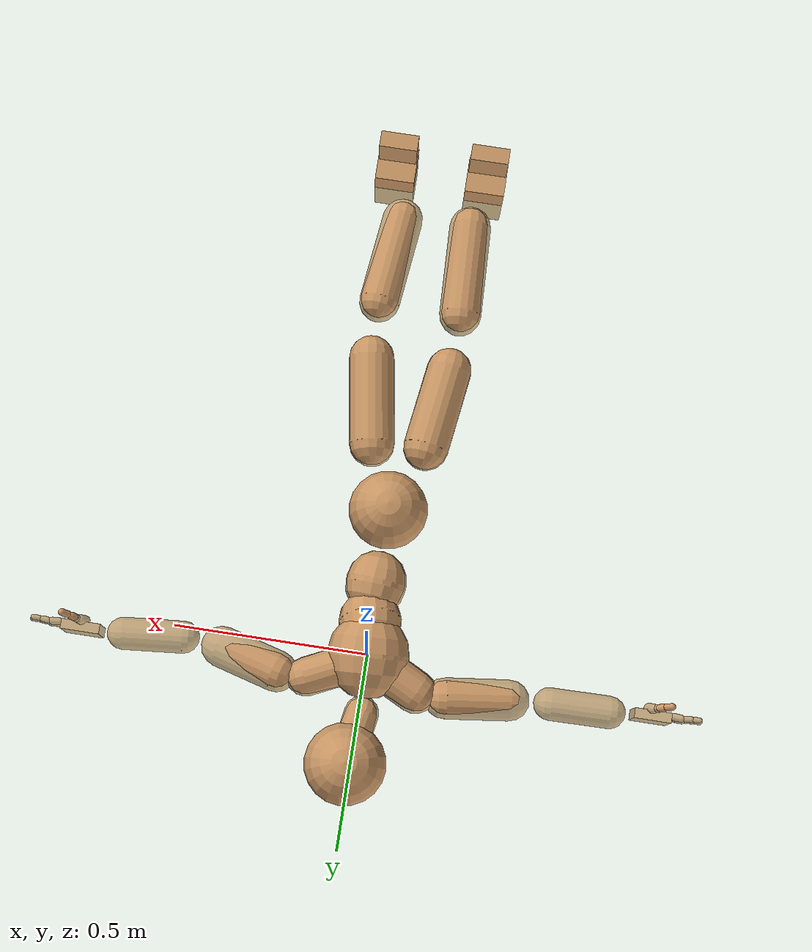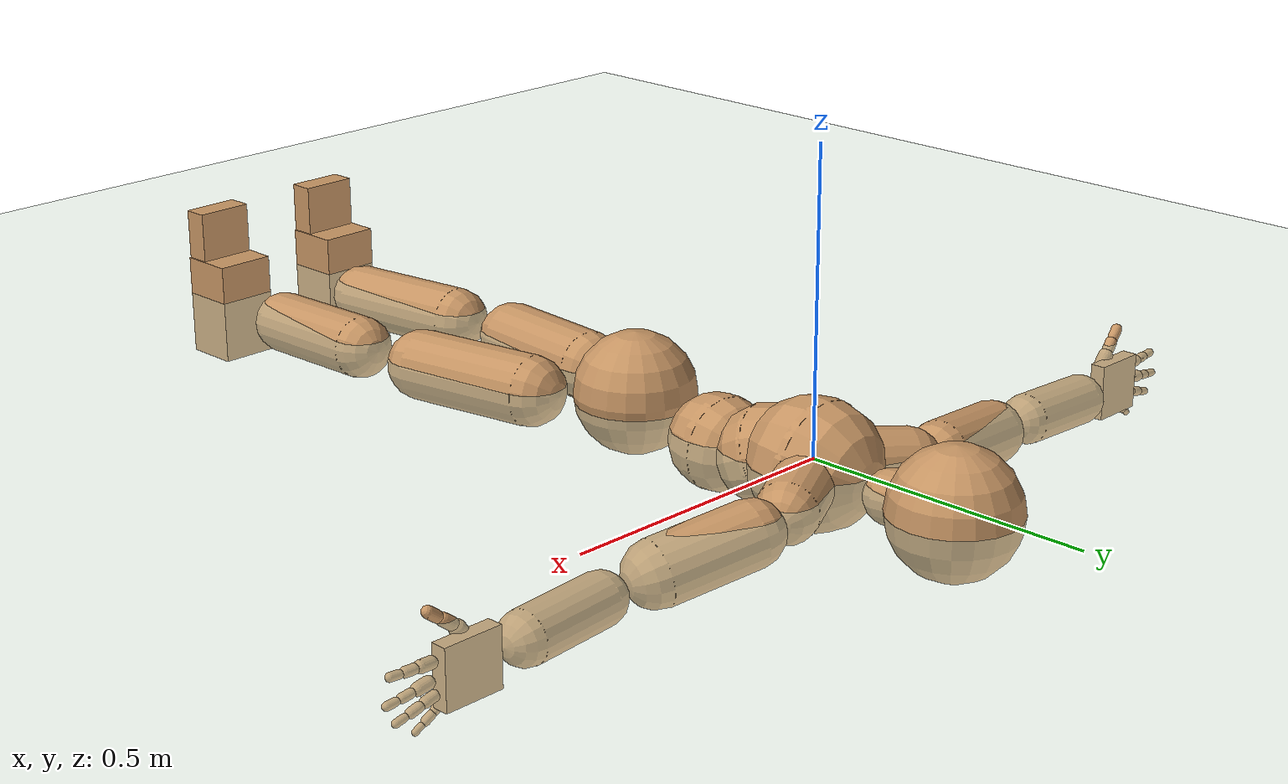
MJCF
<mujoco model="humanoid">
  <compiler coordinate="local"/>
  <default>
    <joint damping="0.0" armature="0.01" stiffness="0.0" limited="true"/>
    <geom conaffinity="1" condim="3" contype="7" margin="0.001" rgba="0.8 0.6 .4 1"/>
  </default>
  <asset>
    <texture type="skybox" builtin="gradient" rgb1=".4 .5 .6" rgb2="0 0 0" width="100" height="100"/>
    <texture builtin="flat" height="1278" mark="cross" markrgb="1 1 1" name="texgeom" random="0.01" rgb1="0.8 0.6 0.4" rgb2="0.8 0.6 0.4" type="cube" width="127"/>
    <texture builtin="checker" height="100" name="texplane" rgb1="0 0 0" rgb2="0.8 0.8 0.8" type="2d" width="100"/>
    <material name="MatPlane" reflectance="0.5" shininess="1" specular="1" texrepeat="60 60" texture="texplane"/>
    <material name="geom" texture="texgeom" texuniform="true"/>
  </asset>
  <worldbody>
    <light cutoff="100" diffuse="1 1 1" dir="-0 0 -1.3" directional="true" exponent="1" pos="0 0 1.3" specular=".1 .1 .1"/>
    <geom conaffinity="1" condim="3" name="floor" pos="0 0 0" rgba="0.8 0.9 0.8 1" size="100 100 .2" type="plane" material="MatPlane"/>
    <body name="Pelvis" pos="0.0029 -0.382 0.0113">
      <freejoint name="Pelvis"/>
      <geom type="sphere" contype="1" conaffinity="1" density="4629.6296296296305" size="0.1031" pos="0.0000 0.0000 0.0000" name="Pelvis"/>
      <body name="L_Hip" pos="0.0577 -0.0972 -0.0243">
        <joint name="L_Hip_x" type="hinge" pos="0 0 0" axis="1 0 0" user="250 2.5 1 500 10 2" armature="0.01" range="-90.0000 90.0000" damping="0" stiffness="0"/>
        <joint name="L_Hip_y" type="hinge" pos="0 0 0" axis="0 1 0" user="250 2.5 1 500 10 2" armature="0.01" range="-90.0000 90.0000" damping="0" stiffness="0"/>
        <joint name="L_Hip_z" type="hinge" pos="0 0 0" axis="0 0 1" user="250 2.5 1 500 10 2" armature="0.01" range="-90.0000 90.0000" damping="0" stiffness="0"/>
        <geom type="capsule" contype="1" conaffinity="1" density="2040.816327" fromto="0.0122 -0.0775 -0.0008 0.0488 -0.3099 -0.0031" size="0.0606" name="L_Hip"/>
        <body name="L_Knee" pos="0.0611 -0.3874 -0.0039">
          <joint name="L_Knee_x" type="hinge" pos="0 0 0" axis="1 0 0" user="250 2.5 1 500 10 2" armature="0.01" range="-180.0000 180.0000" damping="0" stiffness="0"/>
          <joint name="L_Knee_y" type="hinge" pos="0 0 0" axis="0 1 0" user="250 2.5 1 500 10 2" armature="0.01" range="-5.6250 5.6250" damping="0" stiffness="0"/>
          <joint name="L_Knee_z" type="hinge" pos="0 0 0" axis="0 0 1" user="250 2.5 1 500 10 2" armature="0.01" range="-5.6250 5.6250" damping="0" stiffness="0"/>
          <geom type="capsule" contype="1" conaffinity="1" density="1234.567901" fromto="-0.0087 -0.0830 -0.0063 -0.0347 -0.3320 -0.0254" size="0.0544" name="L_Knee"/>
          <body name="L_Ankle" pos="-0.0433 -0.415 -0.0317">
            <joint name="L_Ankle_x" type="hinge" pos="0 0 0" axis="1 0 0" user="150 2.5 1 500 10 2" armature="0.01" range="-90.0000 90.0000" damping="0" stiffness="0"/>
            <joint name="L_Ankle_y" type="hinge" pos="0 0 0" axis="0 1 0" user="150 2.5 1 500 10 2" armature="0.01" range="-90.0000 90.0000" damping="0" stiffness="0"/>
            <joint name="L_Ankle_z" type="hinge" pos="0 0 0" axis="0 0 1" user="150 2.5 1 500 10 2" armature="0.01" range="-90.0000 90.0000" damping="0" stiffness="0"/>
            <geom type="box" density="452.802995" pos="0.0430 -0.0302 0.0247" size="0.0524 0.0487 0.0893" quat="1.0000 0.0000 0.0000 0.0000" name="L_Ankle"/>
            <body name="L_Toe" pos="0.0498 -0.0608 0.1238">
              <joint name="L_Toe_x" type="hinge" pos="0 0 0" axis="1 0 0" user="150 1 1 500 1 1" armature="0.01" range="-90.0000 90.0000" damping="0" stiffness="0"/>
              <joint name="L_Toe_y" type="hinge" pos="0 0 0" axis="0 1 0" user="150 1 1 500 1 1" armature="0.01" range="-45.0000 45.0000" damping="0" stiffness="0"/>
              <joint name="L_Toe_z" type="hinge" pos="0 0 0" axis="0 0 1" user="150 1 1 500 1 1" armature="0.01" range="-45.0000 45.0000" damping="0" stiffness="0"/>
              <geom type="box" density="424.802018" pos="-0.0069 0.0035 0.0270" size="0.0501 0.0215 0.052" quat="1.0000 0.0000 0.0000 0.0000" name="L_Toe"/>
            </body>
          </body>
        </body>
      </body>
      <body name="R_Hip" pos="-0.0626 -0.1101 -0.0182">
        <joint name="R_Hip_x" type="hinge" pos="0 0 0" axis="1 0 0" user="250 2.5 1 500 10 2" armature="0.01" range="-90.0000 90.0000" damping="0" stiffness="0"/>
        <joint name="R_Hip_y" type="hinge" pos="0 0 0" axis="0 1 0" user="250 2.5 1 500 10 2" armature="0.01" range="-90.0000 90.0000" damping="0" stiffness="0"/>
        <joint name="R_Hip_z" type="hinge" pos="0 0 0" axis="0 0 1" user="250 2.5 1 500 10 2" armature="0.01" range="-90.0000 90.0000" damping="0" stiffness="0"/>
        <geom type="capsule" contype="1" conaffinity="1" density="2040.816327" fromto="-0.0100 -0.0738 -0.0025 -0.0402 -0.2951 -0.0100" size="0.0599" name="R_Hip"/>
        <body name="R_Knee" pos="-0.0502 -0.3689 -0.0125">
          <joint name="R_Knee_x" type="hinge" pos="0 0 0" axis="1 0 0" user="250 2.5 1 500 10 2" armature="0.01" range="-180.0000 180.0000" damping="0" stiffness="0"/>
          <joint name="R_Knee_y" type="hinge" pos="0 0 0" axis="0 1 0" user="250 2.5 1 500 10 2" armature="0.01" range="-5.6250 5.6250" damping="0" stiffness="0"/>
          <joint name="R_Knee_z" type="hinge" pos="0 0 0" axis="0 0 1" user="250 2.5 1 500 10 2" armature="0.01" range="-5.6250 5.6250" damping="0" stiffness="0"/>
          <geom type="capsule" contype="1" conaffinity="1" density="1234.567901" fromto="0.0028 -0.0847 -0.0040 0.0113 -0.3386 -0.0158" size="0.0559" name="R_Knee"/>
          <body name="R_Ankle" pos="0.0141 -0.4233 -0.0198">
            <joint name="R_Ankle_x" type="hinge" pos="0 0 0" axis="1 0 0" user="150 1 1 500 10 2" armature="0.01" range="-90.0000 90.0000" damping="0" stiffness="0"/>
            <joint name="R_Ankle_y" type="hinge" pos="0 0 0" axis="0 1 0" user="150 1 1 500 10 2" armature="0.01" range="-90.0000 90.0000" damping="0" stiffness="0"/>
            <joint name="R_Ankle_z" type="hinge" pos="0 0 0" axis="0 0 1" user="150 1 1 500 10 2" armature="0.01" range="-90.0000 90.0000" damping="0" stiffness="0"/>
            <geom type="box" density="452.801815" pos="-0.0255 -0.0275 0.0152" size="0.0524 0.0487 0.0893" quat="1.0000 0.0000 0.0000 0.0000" name="R_Ankle"/>
            <body name="R_Toe" pos="-0.0408 -0.0609 0.1247">
              <joint name="R_Toe_x" type="hinge" pos="0 0 0" axis="1 0 0" user="150 1 1 500 1 1" armature="0.01" range="-90.0000 90.0000" damping="0" stiffness="0"/>
              <joint name="R_Toe_y" type="hinge" pos="0 0 0" axis="0 1 0" user="150 1 1 500 1 1" armature="0.01" range="-45.0000 45.0000" damping="0" stiffness="0"/>
              <joint name="R_Toe_z" type="hinge" pos="0 0 0" axis="0 0 1" user="150 1 1 500 1 1" armature="0.01" range="-45.0000 45.0000" damping="0" stiffness="0"/>
              <geom type="box" density="424.798968" pos="0.0153 0.0062 0.0166" size="0.0501 0.0215 0.052" quat="1.0000 0.0000 0.0000 0.0000" name="R_Toe"/>
            </body>
          </body>
        </body>
      </body>
      <body name="Torso" pos="-0.0027 0.1172 -0.0317">
        <joint name="Torso_x" type="hinge" pos="0 0 0" axis="1 0 0" user="500 5 1 500 10 2" armature="0.01" range="-60.0000 60.0000" damping="0" stiffness="0"/>
        <joint name="Torso_y" type="hinge" pos="0 0 0" axis="0 1 0" user="500 5 1 500 10 2" armature="0.01" range="-60.0000 60.0000" damping="0" stiffness="0"/>
        <joint name="Torso_z" type="hinge" pos="0 0 0" axis="0 0 1" user="500 5 1 500 10 2" armature="0.01" range="-60.0000 60.0000" damping="0" stiffness="0"/>
        <geom type="capsule" contype="1" conaffinity="1" density="2040.816327" fromto="0.0048 0.0662 -0.0033 0.0059 0.0809 -0.0041" size="0.0788" name="Torso"/>
        <body name="Spine" pos="0.0106 0.1471 -0.0074">
          <joint name="Spine_x" type="hinge" pos="0 0 0" axis="1 0 0" user="500 5 1 500 10 2" armature="0.01" range="-60.0000 60.0000" damping="0" stiffness="0"/>
          <joint name="Spine_y" type="hinge" pos="0 0 0" axis="0 1 0" user="500 5 1 500 10 2" armature="0.01" range="-60.0000 60.0000" damping="0" stiffness="0"/>
          <joint name="Spine_z" type="hinge" pos="0 0 0" axis="0 0 1" user="500 5 1 500 10 2" armature="0.01" range="-60.0000 60.0000" damping="0" stiffness="0"/>
          <geom type="capsule" contype="1" conaffinity="1" density="2040.816327" fromto="-0.0053 0.0265 0.0113 -0.0065 0.0324 0.0138" size="0.0817" name="Spine"/>
          <body name="Chest" pos="-0.0118 0.0588 0.0251">
            <joint name="Chest_x" type="hinge" pos="0 0 0" axis="1 0 0" user="500 5 1 500 10 2" armature="0.01" range="-60.0000 60.0000" damping="0" stiffness="0"/>
            <joint name="Chest_y" type="hinge" pos="0 0 0" axis="0 1 0" user="500 5 1 500 10 2" armature="0.01" range="-60.0000 60.0000" damping="0" stiffness="0"/>
            <joint name="Chest_z" type="hinge" pos="0 0 0" axis="0 0 1" user="500 5 1 500 10 2" armature="0.01" range="-60.0000 60.0000" damping="0" stiffness="0"/>
            <geom type="capsule" contype="1" conaffinity="1" density="2040.816327" fromto="-0.0023 0.0524 -0.0062 -0.0029 0.0640 -0.0075" size="0.1063" name="Chest"/>
            <body name="Neck" pos="-0.0132 0.1725 -0.026">
              <joint name="Neck_x" type="hinge" pos="0 0 0" axis="1 0 0" user="150 1 1 250 50 4" armature="0.01" range="-180.0000 180.0000" damping="0" stiffness="0"/>
              <joint name="Neck_y" type="hinge" pos="0 0 0" axis="0 1 0" user="150 1 1 250 50 4" armature="0.01" range="-180.0000 180.0000" damping="0" stiffness="0"/>
              <joint name="Neck_z" type="hinge" pos="0 0 0" axis="0 0 1" user="150 1 1 250 50 4" armature="0.01" range="-180.0000 180.0000" damping="0" stiffness="0"/>
              <geom type="capsule" contype="1" conaffinity="1" density="1000" fromto="0.0053 0.0336 0.0052 0.0212 0.1345 0.0208" size="0.0449" name="Neck"/>
              <body name="Head" pos="0.0265 0.1681 0.026">
                <joint name="Head_x" type="hinge" pos="0 0 0" axis="1 0 0" user="150 1 1 250 50 4" armature="0.01" range="-90.0000 90.0000" damping="0" stiffness="0"/>
                <joint name="Head_y" type="hinge" pos="0 0 0" axis="0 1 0" user="150 1 1 250 50 4" armature="0.01" range="-90.0000 90.0000" damping="0" stiffness="0"/>
                <joint name="Head_z" type="hinge" pos="0 0 0" axis="0 0 1" user="150 1 1 250 50 4" armature="0.01" range="-90.0000 90.0000" damping="0" stiffness="0"/>
                <geom type="sphere" contype="1" conaffinity="1" density="1000" size="0.1055" pos="0.0000 0.0000 0.0000" name="Head"/>
              </body>
            </body>
            <body name="L_Thorax" pos="0.0474 0.0887 -0.0044">
              <joint name="L_Thorax_x" type="hinge" pos="0 0 0" axis="1 0 0" user="200 2 1 500 50 4" armature="0.01" range="-180.0000 180.0000" damping="0" stiffness="0"/>
              <joint name="L_Thorax_y" type="hinge" pos="0 0 0" axis="0 1 0" user="200 2 1 500 50 4" armature="0.01" range="-180.0000 180.0000" damping="0" stiffness="0"/>
              <joint name="L_Thorax_z" type="hinge" pos="0 0 0" axis="0 0 1" user="200 2 1 500 50 4" armature="0.01" range="-180.0000 180.0000" damping="0" stiffness="0"/>
              <geom type="capsule" contype="1" conaffinity="1" density="1000" fromto="0.0252 0.0116 -0.0034 0.1007 0.0464 -0.0136" size="0.0506" name="L_Thorax"/>
              <body name="L_Shoulder" pos="0.1258 0.058 -0.017">
                <joint name="L_Shoulder_x" type="hinge" pos="0 0 0" axis="1 0 0" user="200 2 1 500 50 4" armature="0.01" range="-180.0000 180.0000" damping="0" stiffness="0"/>
                <joint name="L_Shoulder_y" type="hinge" pos="0 0 0" axis="0 1 0" user="200 2 1 500 50 4" armature="0.01" range="-180.0000 180.0000" damping="0" stiffness="0"/>
                <joint name="L_Shoulder_z" type="hinge" pos="0 0 0" axis="0 0 1" user="200 2 1 500 50 4" armature="0.01" range="-180.0000 180.0000" damping="0" stiffness="0"/>
                <geom type="capsule" contype="1" conaffinity="1" density="1000" fromto="0.0514 -0.0146 -0.0088 0.2058 -0.0583 -0.0351" size="0.0536" name="L_Shoulder"/>
                <body name="L_Elbow" pos="0.2572 -0.0728 -0.0439">
                  <joint name="L_Elbow_x" type="hinge" pos="0 0 0" axis="1 0 0" user="150 1 1 150 10 2" armature="0.01" range="-720.0000 720.0000" damping="0" stiffness="0"/>
                  <joint name="L_Elbow_y" type="hinge" pos="0 0 0" axis="0 1 0" user="150 1 1 150 10 2" armature="0.01" range="-720.0000 720.0000" damping="0" stiffness="0"/>
                  <joint name="L_Elbow_z" type="hinge" pos="0 0 0" axis="0 0 1" user="150 1 1 150 10 2" armature="0.01" range="-720.0000 720.0000" damping="0" stiffness="0"/>
                  <geom type="capsule" contype="1" conaffinity="1" density="1000" fromto="0.0525 0.0047 -0.0000 0.2100 0.0188 -0.0001" size="0.0423" name="L_Elbow"/>
                  <body name="L_Wrist" pos="0.2625 0.0235 -0.0001">
                    <joint name="L_Wrist_x" type="hinge" pos="0 0 0" axis="1 0 0" user="100 1 1 150 1 1" armature="0.01" range="-180.0000 180.0000" damping="0" stiffness="0"/>
                    <joint name="L_Wrist_y" type="hinge" pos="0 0 0" axis="0 1 0" user="100 1 1 150 1 1" armature="0.01" range="-180.0000 180.0000" damping="0" stiffness="0"/>
                    <joint name="L_Wrist_z" type="hinge" pos="0 0 0" axis="0 0 1" user="100 1 1 150 1 1" armature="0.01" range="-180.0000 180.0000" damping="0" stiffness="0"/>
                    <geom type="box" density="1214.242045" pos="0.0551 -0.0016 -0.0029" size="0.0508 0.0131 0.0484" quat="1.0000 0.0000 0.0000 0.0000" name="L_Wrist"/>
                    <body name="L_Index1" pos="0.1069 -0.0084 0.0204">
                      <joint name="L_Index1_x" type="hinge" pos="0 0 0" axis="1 0 0" user="100 10 1 150" armature="0.01" range="-180.0000 180.0000" damping="0" stiffness="0"/>
                      <joint name="L_Index1_y" type="hinge" pos="0 0 0" axis="0 1 0" user="100 10 1 150" armature="0.01" range="-180.0000 180.0000" damping="0" stiffness="0"/>
                      <joint name="L_Index1_z" type="hinge" pos="0 0 0" axis="0 0 1" user="100 10 1 150" armature="0.01" range="-180.0000 180.0000" damping="0" stiffness="0"/>
                      <geom type="capsule" contype="1" conaffinity="1" density="1000" fromto="0.0066 0.0005 0.0006 0.0264 0.0020 0.0023" size="0.0097" name="L_Index1"/>
                      <body name="L_Index2" pos="0.033 0.0024 0.0029">
                        <joint name="L_Index2_x" type="hinge" pos="0 0 0" axis="1 0 0" user="100 10 1 150" armature="0.01" range="-180.0000 180.0000" damping="0" stiffness="0"/>
                        <joint name="L_Index2_y" type="hinge" pos="0 0 0" axis="0 1 0" user="100 10 1 150" armature="0.01" range="-180.0000 180.0000" damping="0" stiffness="0"/>
                        <joint name="L_Index2_z" type="hinge" pos="0 0 0" axis="0 0 1" user="100 10 1 150" armature="0.01" range="-180.0000 180.0000" damping="0" stiffness="0"/>
                        <geom type="capsule" contype="1" conaffinity="1" density="1000" fromto="0.0046 -0.0005 -0.0000 0.0186 -0.0020 -0.0002" size="0.008" name="L_Index2"/>
                        <body name="L_Index3" pos="0.0232 -0.0025 -0.0002">
                          <joint name="L_Index3_x" type="hinge" pos="0 0 0" axis="1 0 0" user="100 10 1 150" armature="0.01" range="-180.0000 180.0000" damping="0" stiffness="0"/>
                          <joint name="L_Index3_y" type="hinge" pos="0 0 0" axis="0 1 0" user="100 10 1 150" armature="0.01" range="-180.0000 180.0000" damping="0" stiffness="0"/>
                          <joint name="L_Index3_z" type="hinge" pos="0 0 0" axis="0 0 1" user="100 10 1 150" armature="0.01" range="-180.0000 180.0000" damping="0" stiffness="0"/>
                          <geom type="capsule" contype="1" conaffinity="1" density="1000" fromto="0.0050 -0.0001 0.0004 0.0202 -0.0004 0.0014" size="0.0068" name="L_Index3"/>
                        </body>
                      </body>
                    </body>
                    <body name="L_Middle1" pos="0.115 -0.0061 -0.0042">
                      <joint name="L_Middle1_x" type="hinge" pos="0 0 0" axis="1 0 0" user="100 10 1 150" armature="0.01" range="-180.0000 180.0000" damping="0" stiffness="0"/>
                      <joint name="L_Middle1_y" type="hinge" pos="0 0 0" axis="0 1 0" user="100 10 1 150" armature="0.01" range="-180.0000 180.0000" damping="0" stiffness="0"/>
                      <joint name="L_Middle1_z" type="hinge" pos="0 0 0" axis="0 0 1" user="100 10 1 150" armature="0.01" range="-180.0000 180.0000" damping="0" stiffness="0"/>
                      <geom type="capsule" contype="1" conaffinity="1" density="1000" fromto="0.0063 0.0002 -0.0008 0.0253 0.0006 -0.0033" size="0.01" name="L_Middle1"/>
                      <body name="L_Middle2" pos="0.0317 0.0008 -0.0041">
                        <joint name="L_Middle2_x" type="hinge" pos="0 0 0" axis="1 0 0" user="100 10 1 150" armature="0.01" range="-180.0000 180.0000" damping="0" stiffness="0"/>
                        <joint name="L_Middle2_y" type="hinge" pos="0 0 0" axis="0 1 0" user="100 10 1 150" armature="0.01" range="-180.0000 180.0000" damping="0" stiffness="0"/>
                        <joint name="L_Middle2_z" type="hinge" pos="0 0 0" axis="0 0 1" user="100 10 1 150" armature="0.01" range="-180.0000 180.0000" damping="0" stiffness="0"/>
                        <geom type="capsule" contype="1" conaffinity="1" density="1000" fromto="0.0048 -0.0004 -0.0009 0.0194 -0.0018 -0.0035" size="0.0074" name="L_Middle2"/>
                        <body name="L_Middle3" pos="0.0242 -0.0022 -0.0043">
                          <joint name="L_Middle3_x" type="hinge" pos="0 0 0" axis="1 0 0" user="100 10 1 150" armature="0.01" range="-180.0000 180.0000" damping="0" stiffness="0"/>
                          <joint name="L_Middle3_y" type="hinge" pos="0 0 0" axis="0 1 0" user="100 10 1 150" armature="0.01" range="-180.0000 180.0000" damping="0" stiffness="0"/>
                          <joint name="L_Middle3_z" type="hinge" pos="0 0 0" axis="0 0 1" user="100 10 1 150" armature="0.01" range="-180.0000 180.0000" damping="0" stiffness="0"/>
                          <geom type="capsule" contype="1" conaffinity="1" density="1000" fromto="0.0052 -0.0000 -0.0005 0.0210 -0.0002 -0.0019" size="0.0065" name="L_Middle3"/>
                        </body>
                      </body>
                    </body>
                    <body name="L_Pinky1" pos="0.0888 -0.0148 -0.046">
                      <joint name="L_Pinky1_x" type="hinge" pos="0 0 0" axis="1 0 0" user="100 10 1 150" armature="0.01" range="-180.0000 180.0000" damping="0" stiffness="0"/>
                      <joint name="L_Pinky1_y" type="hinge" pos="0 0 0" axis="0 1 0" user="100 10 1 150" armature="0.01" range="-180.0000 180.0000" damping="0" stiffness="0"/>
                      <joint name="L_Pinky1_z" type="hinge" pos="0 0 0" axis="0 0 1" user="100 10 1 150" armature="0.01" range="-180.0000 180.0000" damping="0" stiffness="0"/>
                      <geom type="capsule" contype="1" conaffinity="1" density="1000" fromto="0.0033 -0.0003 -0.0025 0.0133 -0.0010 -0.0099" size="0.0071" name="L_Pinky1"/>
                      <body name="L_Pinky2" pos="0.0166 -0.0013 -0.0124">
                        <joint name="L_Pinky2_x" type="hinge" pos="0 0 0" axis="1 0 0" user="100 10 1 150" armature="0.01" range="-180.0000 180.0000" damping="0" stiffness="0"/>
                        <joint name="L_Pinky2_y" type="hinge" pos="0 0 0" axis="0 1 0" user="100 10 1 150" armature="0.01" range="-180.0000 180.0000" damping="0" stiffness="0"/>
                        <joint name="L_Pinky2_z" type="hinge" pos="0 0 0" axis="0 0 1" user="100 10 1 150" armature="0.01" range="-180.0000 180.0000" damping="0" stiffness="0"/>
                        <geom type="capsule" contype="1" conaffinity="1" density="1000" fromto="0.0033 -0.0004 -0.0023 0.0131 -0.0015 -0.0091" size="0.0068" name="L_Pinky2"/>
                        <body name="L_Pinky3" pos="0.0163 -0.0019 -0.0114">
                          <joint name="L_Pinky3_x" type="hinge" pos="0 0 0" axis="1 0 0" user="100 10 1 150" armature="0.01" range="-180.0000 180.0000" damping="0" stiffness="0"/>
                          <joint name="L_Pinky3_y" type="hinge" pos="0 0 0" axis="0 1 0" user="100 10 1 150" armature="0.01" range="-180.0000 180.0000" damping="0" stiffness="0"/>
                          <joint name="L_Pinky3_z" type="hinge" pos="0 0 0" axis="0 0 1" user="100 10 1 150" armature="0.01" range="-180.0000 180.0000" damping="0" stiffness="0"/>
                          <geom type="capsule" contype="1" conaffinity="1" density="1000" fromto="0.0037 0.0000 -0.0019 0.0147 0.0001 -0.0075" size="0.0052" name="L_Pinky3"/>
                        </body>
                      </body>
                    </body>
                    <body name="L_Ring1" pos="0.1027 -0.0092 -0.0288">
                      <joint name="L_Ring1_x" type="hinge" pos="0 0 0" axis="1 0 0" user="100 10 1 150" armature="0.01" range="-180.0000 180.0000" damping="0" stiffness="0"/>
                      <joint name="L_Ring1_y" type="hinge" pos="0 0 0" axis="0 1 0" user="100 10 1 150" armature="0.01" range="-180.0000 180.0000" damping="0" stiffness="0"/>
                      <joint name="L_Ring1_z" type="hinge" pos="0 0 0" axis="0 0 1" user="100 10 1 150" armature="0.01" range="-180.0000 180.0000" damping="0" stiffness="0"/>
                      <geom type="capsule" contype="1" conaffinity="1" density="1000" fromto="0.0059 0.0003 -0.0011 0.0235 0.0012 -0.0044" size="0.0084" name="L_Ring1"/>
                      <body name="L_Ring2" pos="0.0294 0.0015 -0.0055">
                        <joint name="L_Ring2_x" type="hinge" pos="0 0 0" axis="1 0 0" user="100 10 1 150" armature="0.01" range="-180.0000 180.0000" damping="0" stiffness="0"/>
                        <joint name="L_Ring2_y" type="hinge" pos="0 0 0" axis="0 1 0" user="100 10 1 150" armature="0.01" range="-180.0000 180.0000" damping="0" stiffness="0"/>
                        <joint name="L_Ring2_z" type="hinge" pos="0 0 0" axis="0 0 1" user="100 10 1 150" armature="0.01" range="-180.0000 180.0000" damping="0" stiffness="0"/>
                        <geom type="capsule" contype="1" conaffinity="1" density="1000" fromto="0.0047 -0.0003 -0.0015 0.0190 -0.0013 -0.0059" size="0.0078" name="L_Ring2"/>
                        <body name="L_Ring3" pos="0.0237 -0.0017 -0.0074">
                          <joint name="L_Ring3_x" type="hinge" pos="0 0 0" axis="1 0 0" user="100 10 1 150" armature="0.01" range="-180.0000 180.0000" damping="0" stiffness="0"/>
                          <joint name="L_Ring3_y" type="hinge" pos="0 0 0" axis="0 1 0" user="100 10 1 150" armature="0.01" range="-180.0000 180.0000" damping="0" stiffness="0"/>
                          <joint name="L_Ring3_z" type="hinge" pos="0 0 0" axis="0 0 1" user="100 10 1 150" armature="0.01" range="-180.0000 180.0000" damping="0" stiffness="0"/>
                          <geom type="capsule" contype="1" conaffinity="1" density="1000" fromto="0.0051 0.0001 -0.0011 0.0206 0.0003 -0.0043" size="0.0061" name="L_Ring3"/>
                        </body>
                      </body>
                    </body>
                    <body name="L_Thumb1" pos="0.0428 -0.0193 0.0274">
                      <joint name="L_Thumb1_x" type="hinge" pos="0 0 0" axis="1 0 0" user="100 10 1 150" armature="0.01" range="-180.0000 180.0000" damping="0" stiffness="0"/>
                      <joint name="L_Thumb1_y" type="hinge" pos="0 0 0" axis="0 1 0" user="100 10 1 150" armature="0.01" range="-180.0000 180.0000" damping="0" stiffness="0"/>
                      <joint name="L_Thumb1_z" type="hinge" pos="0 0 0" axis="0 0 1" user="100 10 1 150" armature="0.01" range="-180.0000 180.0000" damping="0" stiffness="0"/>
                      <geom type="capsule" contype="1" conaffinity="1" density="1000" fromto="0.0036 0.0002 0.0053 0.0142 0.0010 0.0211" size="0.0128" name="L_Thumb1"/>
                      <body name="L_Thumb2" pos="0.0178 0.0012 0.0264">
                        <joint name="L_Thumb2_x" type="hinge" pos="0 0 0" axis="1 0 0" user="100 10 1 150" armature="0.01" range="-180.0000 180.0000" damping="0" stiffness="0"/>
                        <joint name="L_Thumb2_y" type="hinge" pos="0 0 0" axis="0 1 0" user="100 10 1 150" armature="0.01" range="-180.0000 180.0000" damping="0" stiffness="0"/>
                        <joint name="L_Thumb2_z" type="hinge" pos="0 0 0" axis="0 0 1" user="100 10 1 150" armature="0.01" range="-180.0000 180.0000" damping="0" stiffness="0"/>
                        <geom type="capsule" contype="1" conaffinity="1" density="1000" fromto="0.0043 -0.0011 0.0032 0.0172 -0.0042 0.0129" size="0.0102" name="L_Thumb2"/>
                        <body name="L_Thumb3" pos="0.0214 -0.0053 0.0161">
                          <joint name="L_Thumb3_x" type="hinge" pos="0 0 0" axis="1 0 0" user="100 10 1 150" armature="0.01" range="-180.0000 180.0000" damping="0" stiffness="0"/>
                          <joint name="L_Thumb3_y" type="hinge" pos="0 0 0" axis="0 1 0" user="100 10 1 150" armature="0.01" range="-180.0000 180.0000" damping="0" stiffness="0"/>
                          <joint name="L_Thumb3_z" type="hinge" pos="0 0 0" axis="0 0 1" user="100 10 1 150" armature="0.01" range="-180.0000 180.0000" damping="0" stiffness="0"/>
                          <geom type="capsule" contype="1" conaffinity="1" density="1000" fromto="0.0047 -0.0007 0.0036 0.0188 -0.0026 0.0145" size="0.0092" name="L_Thumb3"/>
                        </body>
                      </body>
                    </body>
                  </body>
                </body>
              </body>
            </body>
            <body name="R_Thorax" pos="-0.0499 0.0879 -0.0106">
              <joint name="R_Thorax_x" type="hinge" pos="0 0 0" axis="1 0 0" user="200 2 1 150 10 2" armature="0.01" range="-180.0000 180.0000" damping="0" stiffness="0"/>
              <joint name="R_Thorax_y" type="hinge" pos="0 0 0" axis="0 1 0" user="200 2 1 150 10 2" armature="0.01" range="-180.0000 180.0000" damping="0" stiffness="0"/>
              <joint name="R_Thorax_z" type="hinge" pos="0 0 0" axis="0 0 1" user="200 2 1 150 10 2" armature="0.01" range="-180.0000 180.0000" damping="0" stiffness="0"/>
              <geom type="capsule" contype="1" conaffinity="1" density="1000" fromto="-0.0218 0.0107 -0.0027 -0.0871 0.0429 -0.0109" size="0.0556" name="R_Thorax"/>
              <body name="R_Shoulder" pos="-0.1089 0.0536 -0.0136">
                <joint name="R_Shoulder_x" type="hinge" pos="0 0 0" axis="1 0 0" user="200 2 1 250 10 2" armature="0.01" range="-180.0000 180.0000" damping="0" stiffness="0"/>
                <joint name="R_Shoulder_y" type="hinge" pos="0 0 0" axis="0 1 0" user="200 2 1 250 10 2" armature="0.01" range="-180.0000 180.0000" damping="0" stiffness="0"/>
                <joint name="R_Shoulder_z" type="hinge" pos="0 0 0" axis="0 0 1" user="200 2 1 250 10 2" armature="0.01" range="-180.0000 180.0000" damping="0" stiffness="0"/>
                <geom type="capsule" contype="1" conaffinity="1" density="1000" fromto="-0.0550 -0.0071 -0.0056 -0.2200 -0.0286 -0.0225" size="0.0535" name="R_Shoulder"/>
                <body name="R_Elbow" pos="-0.275 -0.0357 -0.0282">
                  <joint name="R_Elbow_x" type="hinge" pos="0 0 0" axis="1 0 0" user="150 1 1 150 10 2" armature="0.01" range="-720.0000 720.0000" damping="0" stiffness="0"/>
                  <joint name="R_Elbow_y" type="hinge" pos="0 0 0" axis="0 1 0" user="150 1 1 150 10 2" armature="0.01" range="-720.0000 720.0000" damping="0" stiffness="0"/>
                  <joint name="R_Elbow_z" type="hinge" pos="0 0 0" axis="0 0 1" user="150 1 1 150 10 2" armature="0.01" range="-720.0000 720.0000" damping="0" stiffness="0"/>
                  <geom type="capsule" contype="1" conaffinity="1" density="1000" fromto="-0.0518 -0.0010 -0.0027 -0.2074 -0.0041 -0.0107" size="0.0426" name="R_Elbow"/>
                  <body name="R_Wrist" pos="-0.2592 -0.0051 -0.0134">
                    <joint name="R_Wrist_x" type="hinge" pos="0 0 0" axis="1 0 0" user="100 1 1 150 1 1" armature="0.01" range="-180.0000 180.0000" damping="0" stiffness="0"/>
                    <joint name="R_Wrist_y" type="hinge" pos="0 0 0" axis="0 1 0" user="100 1 1 150 1 1" armature="0.01" range="-180.0000 180.0000" damping="0" stiffness="0"/>
                    <joint name="R_Wrist_z" type="hinge" pos="0 0 0" axis="0 0 1" user="100 1 1 150 1 1" armature="0.01" range="-180.0000 180.0000" damping="0" stiffness="0"/>
                    <geom type="box" density="1240.444038" pos="-0.0564 -0.0048 -0.0026" size="0.0479 0.0131 0.0484" quat="1.0000 0.0000 0.0000 0.0000" name="R_Wrist"/>
                    <body name="R_Index1" pos="-0.105 -0.0117 0.0208">
                      <joint name="R_Index1_x" type="hinge" pos="0 0 0" axis="1 0 0" user="100 10 1 150" armature="0.01" range="-180.0000 180.0000" damping="0" stiffness="0"/>
                      <joint name="R_Index1_y" type="hinge" pos="0 0 0" axis="0 1 0" user="100 10 1 150" armature="0.01" range="-180.0000 180.0000" damping="0" stiffness="0"/>
                      <joint name="R_Index1_z" type="hinge" pos="0 0 0" axis="0 0 1" user="100 10 1 150" armature="0.01" range="-180.0000 180.0000" damping="0" stiffness="0"/>
                      <geom type="capsule" contype="1" conaffinity="1" density="1000" fromto="-0.0066 0.0005 0.0006 -0.0264 0.0020 0.0023" size="0.0097" name="R_Index1"/>
                      <body name="R_Index2" pos="-0.033 0.0024 0.0029">
                        <joint name="R_Index2_x" type="hinge" pos="0 0 0" axis="1 0 0" user="100 10 1 150" armature="0.01" range="-180.0000 180.0000" damping="0" stiffness="0"/>
                        <joint name="R_Index2_y" type="hinge" pos="0 0 0" axis="0 1 0" user="100 10 1 150" armature="0.01" range="-180.0000 180.0000" damping="0" stiffness="0"/>
                        <joint name="R_Index2_z" type="hinge" pos="0 0 0" axis="0 0 1" user="100 10 1 150" armature="0.01" range="-180.0000 180.0000" damping="0" stiffness="0"/>
                        <geom type="capsule" contype="1" conaffinity="1" density="1000" fromto="-0.0046 -0.0005 -0.0000 -0.0186 -0.0020 -0.0002" size="0.008" name="R_Index2"/>
                        <body name="R_Index3" pos="-0.0232 -0.0025 -0.0002">
                          <joint name="R_Index3_x" type="hinge" pos="0 0 0" axis="1 0 0" user="100 10 1 150" armature="0.01" range="-180.0000 180.0000" damping="0" stiffness="0"/>
                          <joint name="R_Index3_y" type="hinge" pos="0 0 0" axis="0 1 0" user="100 10 1 150" armature="0.01" range="-180.0000 180.0000" damping="0" stiffness="0"/>
                          <joint name="R_Index3_z" type="hinge" pos="0 0 0" axis="0 0 1" user="100 10 1 150" armature="0.01" range="-180.0000 180.0000" damping="0" stiffness="0"/>
                          <geom type="capsule" contype="1" conaffinity="1" density="1000" fromto="-0.0042 -0.0001 0.0004 -0.0170 -0.0004 0.0014" size="0.0071" name="R_Index3"/>
                        </body>
                      </body>
                    </body>
                    <body name="R_Middle1" pos="-0.113 -0.0093 -0.0039">
                      <joint name="R_Middle1_x" type="hinge" pos="0 0 0" axis="1 0 0" user="100 10 1 150" armature="0.01" range="-180.0000 180.0000" damping="0" stiffness="0"/>
                      <joint name="R_Middle1_y" type="hinge" pos="0 0 0" axis="0 1 0" user="100 10 1 150" armature="0.01" range="-180.0000 180.0000" damping="0" stiffness="0"/>
                      <joint name="R_Middle1_z" type="hinge" pos="0 0 0" axis="0 0 1" user="100 10 1 150" armature="0.01" range="-180.0000 180.0000" damping="0" stiffness="0"/>
                      <geom type="capsule" contype="1" conaffinity="1" density="1000" fromto="-0.0063 0.0002 -0.0008 -0.0253 0.0006 -0.0033" size="0.01" name="R_Middle1"/>
                      <body name="R_Middle2" pos="-0.0317 0.0008 -0.0041">
                        <joint name="R_Middle2_x" type="hinge" pos="0 0 0" axis="1 0 0" user="100 10 1 150" armature="0.01" range="-180.0000 180.0000" damping="0" stiffness="0"/>
                        <joint name="R_Middle2_y" type="hinge" pos="0 0 0" axis="0 1 0" user="100 10 1 150" armature="0.01" range="-180.0000 180.0000" damping="0" stiffness="0"/>
                        <joint name="R_Middle2_z" type="hinge" pos="0 0 0" axis="0 0 1" user="100 10 1 150" armature="0.01" range="-180.0000 180.0000" damping="0" stiffness="0"/>
                        <geom type="capsule" contype="1" conaffinity="1" density="1000" fromto="-0.0048 -0.0004 -0.0009 -0.0194 -0.0018 -0.0035" size="0.0074" name="R_Middle2"/>
                        <body name="R_Middle3" pos="-0.0242 -0.0022 -0.0043">
                          <joint name="R_Middle3_x" type="hinge" pos="0 0 0" axis="1 0 0" user="100 10 1 150" armature="0.01" range="-180.0000 180.0000" damping="0" stiffness="0"/>
                          <joint name="R_Middle3_y" type="hinge" pos="0 0 0" axis="0 1 0" user="100 10 1 150" armature="0.01" range="-180.0000 180.0000" damping="0" stiffness="0"/>
                          <joint name="R_Middle3_z" type="hinge" pos="0 0 0" axis="0 0 1" user="100 10 1 150" armature="0.01" range="-180.0000 180.0000" damping="0" stiffness="0"/>
                          <geom type="capsule" contype="1" conaffinity="1" density="1000" fromto="-0.0044 -0.0000 -0.0005 -0.0178 -0.0002 -0.0019" size="0.0067" name="R_Middle3"/>
                        </body>
                      </body>
                    </body>
                    <body name="R_Pinky1" pos="-0.0868 -0.018 -0.0457">
                      <joint name="R_Pinky1_x" type="hinge" pos="0 0 0" axis="1 0 0" user="100 10 1 150" armature="0.01" range="-180.0000 180.0000" damping="0" stiffness="0"/>
                      <joint name="R_Pinky1_y" type="hinge" pos="0 0 0" axis="0 1 0" user="100 10 1 150" armature="0.01" range="-180.0000 180.0000" damping="0" stiffness="0"/>
                      <joint name="R_Pinky1_z" type="hinge" pos="0 0 0" axis="0 0 1" user="100 10 1 150" armature="0.01" range="-180.0000 180.0000" damping="0" stiffness="0"/>
                      <geom type="capsule" contype="1" conaffinity="1" density="1000" fromto="-0.0033 -0.0003 -0.0025 -0.0133 -0.0010 -0.0099" size="0.0071" name="R_Pinky1"/>
                      <body name="R_Pinky2" pos="-0.0166 -0.0013 -0.0124">
                        <joint name="R_Pinky2_x" type="hinge" pos="0 0 0" axis="1 0 0" user="100 10 1 150" armature="0.01" range="-180.0000 180.0000" damping="0" stiffness="0"/>
                        <joint name="R_Pinky2_y" type="hinge" pos="0 0 0" axis="0 1 0" user="100 10 1 150" armature="0.01" range="-180.0000 180.0000" damping="0" stiffness="0"/>
                        <joint name="R_Pinky2_z" type="hinge" pos="0 0 0" axis="0 0 1" user="100 10 1 150" armature="0.01" range="-180.0000 180.0000" damping="0" stiffness="0"/>
                        <geom type="capsule" contype="1" conaffinity="1" density="1000" fromto="-0.0033 -0.0004 -0.0023 -0.0131 -0.0015 -0.0091" size="0.0068" name="R_Pinky2"/>
                        <body name="R_Pinky3" pos="-0.0163 -0.0019 -0.0114">
                          <joint name="R_Pinky3_x" type="hinge" pos="0 0 0" axis="1 0 0" user="100 10 1 150" armature="0.01" range="-180.0000 180.0000" damping="0" stiffness="0"/>
                          <joint name="R_Pinky3_y" type="hinge" pos="0 0 0" axis="0 1 0" user="100 10 1 150" armature="0.01" range="-180.0000 180.0000" damping="0" stiffness="0"/>
                          <joint name="R_Pinky3_z" type="hinge" pos="0 0 0" axis="0 0 1" user="100 10 1 150" armature="0.01" range="-180.0000 180.0000" damping="0" stiffness="0"/>
                          <geom type="capsule" contype="1" conaffinity="1" density="1000" fromto="-0.0029 0.0000 -0.0019 -0.0115 0.0001 -0.0075" size="0.0054" name="R_Pinky3"/>
                        </body>
                      </body>
                    </body>
                    <body name="R_Ring1" pos="-0.1008 -0.0124 -0.0285">
                      <joint name="R_Ring1_x" type="hinge" pos="0 0 0" axis="1 0 0" user="100 10 1 150" armature="0.01" range="-180.0000 180.0000" damping="0" stiffness="0"/>
                      <joint name="R_Ring1_y" type="hinge" pos="0 0 0" axis="0 1 0" user="100 10 1 150" armature="0.01" range="-180.0000 180.0000" damping="0" stiffness="0"/>
                      <joint name="R_Ring1_z" type="hinge" pos="0 0 0" axis="0 0 1" user="100 10 1 150" armature="0.01" range="-180.0000 180.0000" damping="0" stiffness="0"/>
                      <geom type="capsule" contype="1" conaffinity="1" density="1000" fromto="-0.0059 0.0003 -0.0011 -0.0235 0.0012 -0.0044" size="0.0084" name="R_Ring1"/>
                      <body name="R_Ring2" pos="-0.0294 0.0015 -0.0055">
                        <joint name="R_Ring2_x" type="hinge" pos="0 0 0" axis="1 0 0" user="100 10 1 150" armature="0.01" range="-180.0000 180.0000" damping="0" stiffness="0"/>
                        <joint name="R_Ring2_y" type="hinge" pos="0 0 0" axis="0 1 0" user="100 10 1 150" armature="0.01" range="-180.0000 180.0000" damping="0" stiffness="0"/>
                        <joint name="R_Ring2_z" type="hinge" pos="0 0 0" axis="0 0 1" user="100 10 1 150" armature="0.01" range="-180.0000 180.0000" damping="0" stiffness="0"/>
                        <geom type="capsule" contype="1" conaffinity="1" density="1000" fromto="-0.0047 -0.0003 -0.0015 -0.0190 -0.0013 -0.0059" size="0.0078" name="R_Ring2"/>
                        <body name="R_Ring3" pos="-0.0237 -0.0017 -0.0073">
                          <joint name="R_Ring3_x" type="hinge" pos="0 0 0" axis="1 0 0" user="100 10 1 150" armature="0.01" range="-180.0000 180.0000" damping="0" stiffness="0"/>
                          <joint name="R_Ring3_y" type="hinge" pos="0 0 0" axis="0 1 0" user="100 10 1 150" armature="0.01" range="-180.0000 180.0000" damping="0" stiffness="0"/>
                          <joint name="R_Ring3_z" type="hinge" pos="0 0 0" axis="0 0 1" user="100 10 1 150" armature="0.01" range="-180.0000 180.0000" damping="0" stiffness="0"/>
                          <geom type="capsule" contype="1" conaffinity="1" density="1000" fromto="-0.0043 0.0001 -0.0011 -0.0174 0.0003 -0.0043" size="0.0063" name="R_Ring3"/>
                        </body>
                      </body>
                    </body>
                    <body name="R_Thumb1" pos="-0.0408 -0.0226 0.0278">
                      <joint name="R_Thumb1_x" type="hinge" pos="0 0 0" axis="1 0 0" user="100 10 1 150" armature="0.01" range="-180.0000 180.0000" damping="0" stiffness="0"/>
                      <joint name="R_Thumb1_y" type="hinge" pos="0 0 0" axis="0 1 0" user="100 10 1 150" armature="0.01" range="-180.0000 180.0000" damping="0" stiffness="0"/>
                      <joint name="R_Thumb1_z" type="hinge" pos="0 0 0" axis="0 0 1" user="100 10 1 150" armature="0.01" range="-180.0000 180.0000" damping="0" stiffness="0"/>
                      <geom type="capsule" contype="1" conaffinity="1" density="1000" fromto="-0.0036 0.0002 0.0053 -0.0142 0.0010 0.0211" size="0.0128" name="R_Thumb1"/>
                      <body name="R_Thumb2" pos="-0.0178 0.0012 0.0264">
                        <joint name="R_Thumb2_x" type="hinge" pos="0 0 0" axis="1 0 0" user="100 10 1 150" armature="0.01" range="-180.0000 180.0000" damping="0" stiffness="0"/>
                        <joint name="R_Thumb2_y" type="hinge" pos="0 0 0" axis="0 1 0" user="100 10 1 150" armature="0.01" range="-180.0000 180.0000" damping="0" stiffness="0"/>
                        <joint name="R_Thumb2_z" type="hinge" pos="0 0 0" axis="0 0 1" user="100 10 1 150" armature="0.01" range="-180.0000 180.0000" damping="0" stiffness="0"/>
                        <geom type="capsule" contype="1" conaffinity="1" density="1000" fromto="-0.0043 -0.0011 0.0032 -0.0172 -0.0042 0.0129" size="0.0102" name="R_Thumb2"/>
                        <body name="R_Thumb3" pos="-0.0214 -0.0053 0.0161">
                          <joint name="R_Thumb3_x" type="hinge" pos="0 0 0" axis="1 0 0" user="100 10 1 150" armature="0.01" range="-180.0000 180.0000" damping="0" stiffness="0"/>
                          <joint name="R_Thumb3_y" type="hinge" pos="0 0 0" axis="0 1 0" user="100 10 1 150" armature="0.01" range="-180.0000 180.0000" damping="0" stiffness="0"/>
                          <joint name="R_Thumb3_z" type="hinge" pos="0 0 0" axis="0 0 1" user="100 10 1 150" armature="0.01" range="-180.0000 180.0000" damping="0" stiffness="0"/>
                          <geom type="capsule" contype="1" conaffinity="1" density="1000" fromto="-0.0039 -0.0007 0.0036 -0.0156 -0.0026 0.0145" size="0.0094" name="R_Thumb3"/>
                        </body>
                      </body>
                    </body>
                  </body>
                </body>
              </body>
            </body>
          </body>
        </body>
      </body>
    </body>
  </worldbody>
  <actuator>
    <motor name="L_Hip_x" joint="L_Hip_x" gear="1"/>
    <motor name="L_Hip_y" joint="L_Hip_y" gear="1"/>
    <motor name="L_Hip_z" joint="L_Hip_z" gear="1"/>
    <motor name="L_Knee_x" joint="L_Knee_x" gear="1"/>
    <motor name="L_Knee_y" joint="L_Knee_y" gear="1"/>
    <motor name="L_Knee_z" joint="L_Knee_z" gear="1"/>
    <motor name="L_Ankle_x" joint="L_Ankle_x" gear="1"/>
    <motor name="L_Ankle_y" joint="L_Ankle_y" gear="1"/>
    <motor name="L_Ankle_z" joint="L_Ankle_z" gear="1"/>
    <motor name="L_Toe_x" joint="L_Toe_x" gear="1"/>
    <motor name="L_Toe_y" joint="L_Toe_y" gear="1"/>
    <motor name="L_Toe_z" joint="L_Toe_z" gear="1"/>
    <motor name="R_Hip_x" joint="R_Hip_x" gear="1"/>
    <motor name="R_Hip_y" joint="R_Hip_y" gear="1"/>
    <motor name="R_Hip_z" joint="R_Hip_z" gear="1"/>
    <motor name="R_Knee_x" joint="R_Knee_x" gear="1"/>
    <motor name="R_Knee_y" joint="R_Knee_y" gear="1"/>
    <motor name="R_Knee_z" joint="R_Knee_z" gear="1"/>
    <motor name="R_Ankle_x" joint="R_Ankle_x" gear="1"/>
    <motor name="R_Ankle_y" joint="R_Ankle_y" gear="1"/>
    <motor name="R_Ankle_z" joint="R_Ankle_z" gear="1"/>
    <motor name="R_Toe_x" joint="R_Toe_x" gear="1"/>
    <motor name="R_Toe_y" joint="R_Toe_y" gear="1"/>
    <motor name="R_Toe_z" joint="R_Toe_z" gear="1"/>
    <motor name="Torso_x" joint="Torso_x" gear="1"/>
    <motor name="Torso_y" joint="Torso_y" gear="1"/>
    <motor name="Torso_z" joint="Torso_z" gear="1"/>
    <motor name="Spine_x" joint="Spine_x" gear="1"/>
    <motor name="Spine_y" joint="Spine_y" gear="1"/>
    <motor name="Spine_z" joint="Spine_z" gear="1"/>
    <motor name="Chest_x" joint="Chest_x" gear="1"/>
    <motor name="Chest_y" joint="Chest_y" gear="1"/>
    <motor name="Chest_z" joint="Chest_z" gear="1"/>
    <motor name="Neck_x" joint="Neck_x" gear="1"/>
    <motor name="Neck_y" joint="Neck_y" gear="1"/>
    <motor name="Neck_z" joint="Neck_z" gear="1"/>
    <motor name="Head_x" joint="Head_x" gear="1"/>
    <motor name="Head_y" joint="Head_y" gear="1"/>
    <motor name="Head_z" joint="Head_z" gear="1"/>
    <motor name="L_Thorax_x" joint="L_Thorax_x" gear="1"/>
    <motor name="L_Thorax_y" joint="L_Thorax_y" gear="1"/>
    <motor name="L_Thorax_z" joint="L_Thorax_z" gear="1"/>
    <motor name="L_Shoulder_x" joint="L_Shoulder_x" gear="1"/>
    <motor name="L_Shoulder_y" joint="L_Shoulder_y" gear="1"/>
    <motor name="L_Shoulder_z" joint="L_Shoulder_z" gear="1"/>
    <motor name="L_Elbow_x" joint="L_Elbow_x" gear="1"/>
    <motor name="L_Elbow_y" joint="L_Elbow_y" gear="1"/>
    <motor name="L_Elbow_z" joint="L_Elbow_z" gear="1"/>
    <motor name="L_Wrist_x" joint="L_Wrist_x" gear="1"/>
    <motor name="L_Wrist_y" joint="L_Wrist_y" gear="1"/>
    <motor name="L_Wrist_z" joint="L_Wrist_z" gear="1"/>
    <motor name="L_Index1_x" joint="L_Index1_x" gear="1"/>
    <motor name="L_Index1_y" joint="L_Index1_y" gear="1"/>
    <motor name="L_Index1_z" joint="L_Index1_z" gear="1"/>
    <motor name="L_Index2_x" joint="L_Index2_x" gear="1"/>
    <motor name="L_Index2_y" joint="L_Index2_y" gear="1"/>
    <motor name="L_Index2_z" joint="L_Index2_z" gear="1"/>
    <motor name="L_Index3_x" joint="L_Index3_x" gear="1"/>
    <motor name="L_Index3_y" joint="L_Index3_y" gear="1"/>
    <motor name="L_Index3_z" joint="L_Index3_z" gear="1"/>
    <motor name="L_Middle1_x" joint="L_Middle1_x" gear="1"/>
    <motor name="L_Middle1_y" joint="L_Middle1_y" gear="1"/>
    <motor name="L_Middle1_z" joint="L_Middle1_z" gear="1"/>
    <motor name="L_Middle2_x" joint="L_Middle2_x" gear="1"/>
    <motor name="L_Middle2_y" joint="L_Middle2_y" gear="1"/>
    <motor name="L_Middle2_z" joint="L_Middle2_z" gear="1"/>
    <motor name="L_Middle3_x" joint="L_Middle3_x" gear="1"/>
    <motor name="L_Middle3_y" joint="L_Middle3_y" gear="1"/>
    <motor name="L_Middle3_z" joint="L_Middle3_z" gear="1"/>
    <motor name="L_Pinky1_x" joint="L_Pinky1_x" gear="1"/>
    <motor name="L_Pinky1_y" joint="L_Pinky1_y" gear="1"/>
    <motor name="L_Pinky1_z" joint="L_Pinky1_z" gear="1"/>
    <motor name="L_Pinky2_x" joint="L_Pinky2_x" gear="1"/>
    <motor name="L_Pinky2_y" joint="L_Pinky2_y" gear="1"/>
    <motor name="L_Pinky2_z" joint="L_Pinky2_z" gear="1"/>
    <motor name="L_Pinky3_x" joint="L_Pinky3_x" gear="1"/>
    <motor name="L_Pinky3_y" joint="L_Pinky3_y" gear="1"/>
    <motor name="L_Pinky3_z" joint="L_Pinky3_z" gear="1"/>
    <motor name="L_Ring1_x" joint="L_Ring1_x" gear="1"/>
    <motor name="L_Ring1_y" joint="L_Ring1_y" gear="1"/>
    <motor name="L_Ring1_z" joint="L_Ring1_z" gear="1"/>
    <motor name="L_Ring2_x" joint="L_Ring2_x" gear="1"/>
    <motor name="L_Ring2_y" joint="L_Ring2_y" gear="1"/>
    <motor name="L_Ring2_z" joint="L_Ring2_z" gear="1"/>
    <motor name="L_Ring3_x" joint="L_Ring3_x" gear="1"/>
    <motor name="L_Ring3_y" joint="L_Ring3_y" gear="1"/>
    <motor name="L_Ring3_z" joint="L_Ring3_z" gear="1"/>
    <motor name="L_Thumb1_x" joint="L_Thumb1_x" gear="1"/>
    <motor name="L_Thumb1_y" joint="L_Thumb1_y" gear="1"/>
    <motor name="L_Thumb1_z" joint="L_Thumb1_z" gear="1"/>
    <motor name="L_Thumb2_x" joint="L_Thumb2_x" gear="1"/>
    <motor name="L_Thumb2_y" joint="L_Thumb2_y" gear="1"/>
    <motor name="L_Thumb2_z" joint="L_Thumb2_z" gear="1"/>
    <motor name="L_Thumb3_x" joint="L_Thumb3_x" gear="1"/>
    <motor name="L_Thumb3_y" joint="L_Thumb3_y" gear="1"/>
    <motor name="L_Thumb3_z" joint="L_Thumb3_z" gear="1"/>
    <motor name="R_Thorax_x" joint="R_Thorax_x" gear="1"/>
    <motor name="R_Thorax_y" joint="R_Thorax_y" gear="1"/>
    <motor name="R_Thorax_z" joint="R_Thorax_z" gear="1"/>
    <motor name="R_Shoulder_x" joint="R_Shoulder_x" gear="1"/>
    <motor name="R_Shoulder_y" joint="R_Shoulder_y" gear="1"/>
    <motor name="R_Shoulder_z" joint="R_Shoulder_z" gear="1"/>
    <motor name="R_Elbow_x" joint="R_Elbow_x" gear="1"/>
    <motor name="R_Elbow_y" joint="R_Elbow_y" gear="1"/>
    <motor name="R_Elbow_z" joint="R_Elbow_z" gear="1"/>
    <motor name="R_Wrist_x" joint="R_Wrist_x" gear="1"/>
    <motor name="R_Wrist_y" joint="R_Wrist_y" gear="1"/>
    <motor name="R_Wrist_z" joint="R_Wrist_z" gear="1"/>
    <motor name="R_Index1_x" joint="R_Index1_x" gear="1"/>
    <motor name="R_Index1_y" joint="R_Index1_y" gear="1"/>
    <motor name="R_Index1_z" joint="R_Index1_z" gear="1"/>
    <motor name="R_Index2_x" joint="R_Index2_x" gear="1"/>
    <motor name="R_Index2_y" joint="R_Index2_y" gear="1"/>
    <motor name="R_Index2_z" joint="R_Index2_z" gear="1"/>
    <motor name="R_Index3_x" joint="R_Index3_x" gear="1"/>
    <motor name="R_Index3_y" joint="R_Index3_y" gear="1"/>
    <motor name="R_Index3_z" joint="R_Index3_z" gear="1"/>
    <motor name="R_Middle1_x" joint="R_Middle1_x" gear="1"/>
    <motor name="R_Middle1_y" joint="R_Middle1_y" gear="1"/>
    <motor name="R_Middle1_z" joint="R_Middle1_z" gear="1"/>
    <motor name="R_Middle2_x" joint="R_Middle2_x" gear="1"/>
    <motor name="R_Middle2_y" joint="R_Middle2_y" gear="1"/>
    <motor name="R_Middle2_z" joint="R_Middle2_z" gear="1"/>
    <motor name="R_Middle3_x" joint="R_Middle3_x" gear="1"/>
    <motor name="R_Middle3_y" joint="R_Middle3_y" gear="1"/>
    <motor name="R_Middle3_z" joint="R_Middle3_z" gear="1"/>
    <motor name="R_Pinky1_x" joint="R_Pinky1_x" gear="1"/>
    <motor name="R_Pinky1_y" joint="R_Pinky1_y" gear="1"/>
    <motor name="R_Pinky1_z" joint="R_Pinky1_z" gear="1"/>
    <motor name="R_Pinky2_x" joint="R_Pinky2_x" gear="1"/>
    <motor name="R_Pinky2_y" joint="R_Pinky2_y" gear="1"/>
    <motor name="R_Pinky2_z" joint="R_Pinky2_z" gear="1"/>
    <motor name="R_Pinky3_x" joint="R_Pinky3_x" gear="1"/>
    <motor name="R_Pinky3_y" joint="R_Pinky3_y" gear="1"/>
    <motor name="R_Pinky3_z" joint="R_Pinky3_z" gear="1"/>
    <motor name="R_Ring1_x" joint="R_Ring1_x" gear="1"/>
    <motor name="R_Ring1_y" joint="R_Ring1_y" gear="1"/>
    <motor name="R_Ring1_z" joint="R_Ring1_z" gear="1"/>
    <motor name="R_Ring2_x" joint="R_Ring2_x" gear="1"/>
    <motor name="R_Ring2_y" joint="R_Ring2_y" gear="1"/>
    <motor name="R_Ring2_z" joint="R_Ring2_z" gear="1"/>
    <motor name="R_Ring3_x" joint="R_Ring3_x" gear="1"/>
    <motor name="R_Ring3_y" joint="R_Ring3_y" gear="1"/>
    <motor name="R_Ring3_z" joint="R_Ring3_z" gear="1"/>
    <motor name="R_Thumb1_x" joint="R_Thumb1_x" gear="1"/>
    <motor name="R_Thumb1_y" joint="R_Thumb1_y" gear="1"/>
    <motor name="R_Thumb1_z" joint="R_Thumb1_z" gear="1"/>
    <motor name="R_Thumb2_x" joint="R_Thumb2_x" gear="1"/>
    <motor name="R_Thumb2_y" joint="R_Thumb2_y" gear="1"/>
    <motor name="R_Thumb2_z" joint="R_Thumb2_z" gear="1"/>
    <motor name="R_Thumb3_x" joint="R_Thumb3_x" gear="1"/>
    <motor name="R_Thumb3_y" joint="R_Thumb3_y" gear="1"/>
    <motor name="R_Thumb3_z" joint="R_Thumb3_z" gear="1"/>
  </actuator>
  <contact>
    <exclude body1="Torso" body2="Chest"/>
    <exclude body1="Head" body2="Chest"/>
    <exclude body1="R_Knee" body2="R_Toe"/>
    <exclude body1="R_Knee" body2="L_Ankle"/>
    <exclude body1="R_Knee" body2="L_Toe"/>
    <exclude body1="L_Knee" body2="L_Toe"/>
    <exclude body1="L_Knee" body2="R_Ankle"/>
    <exclude body1="L_Knee" body2="R_Toe"/>
    <exclude body1="L_Shoulder" body2="Chest"/>
    <exclude body1="R_Shoulder" body2="Chest"/>
  </contact>
  <sensor/>
  <size njmax="700" nconmax="700"/>
</mujoco>
